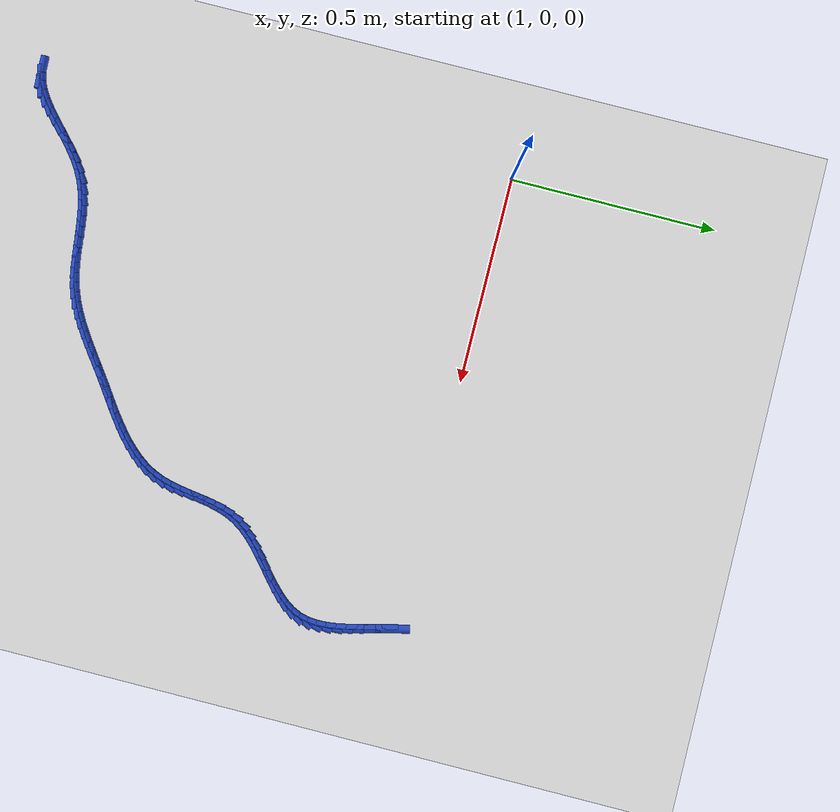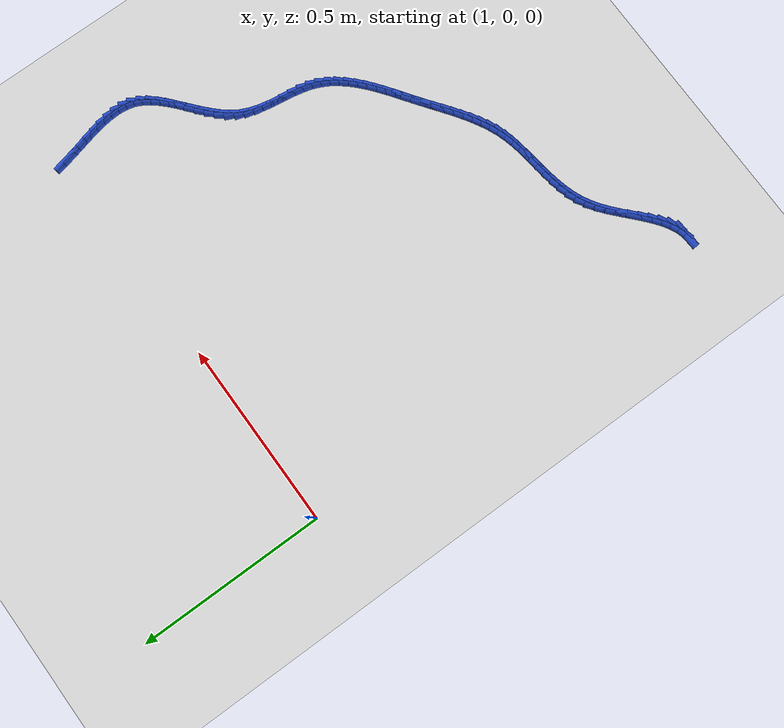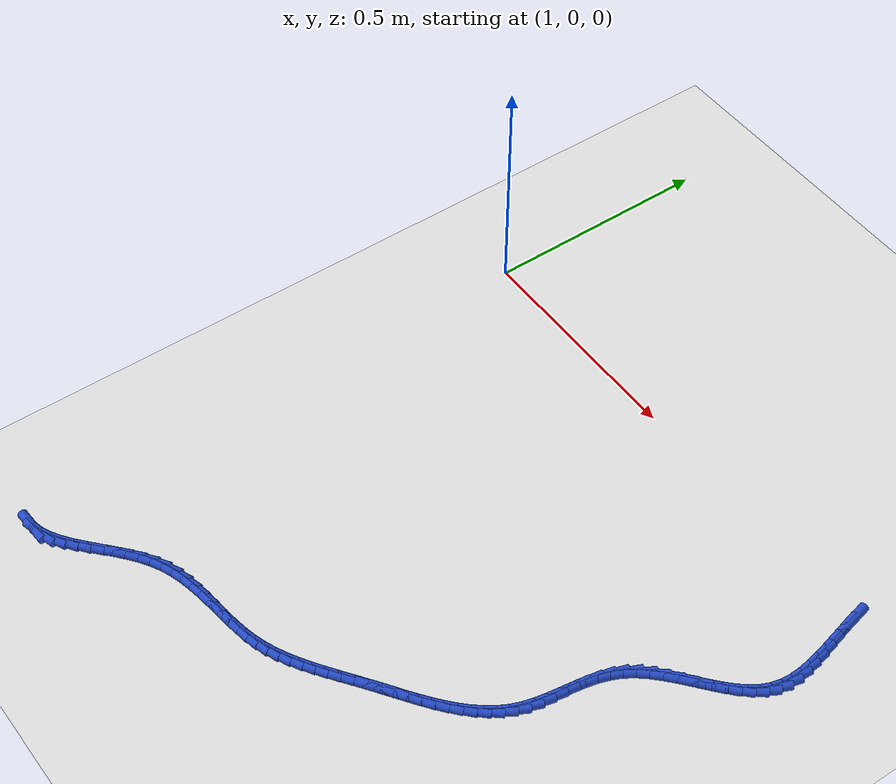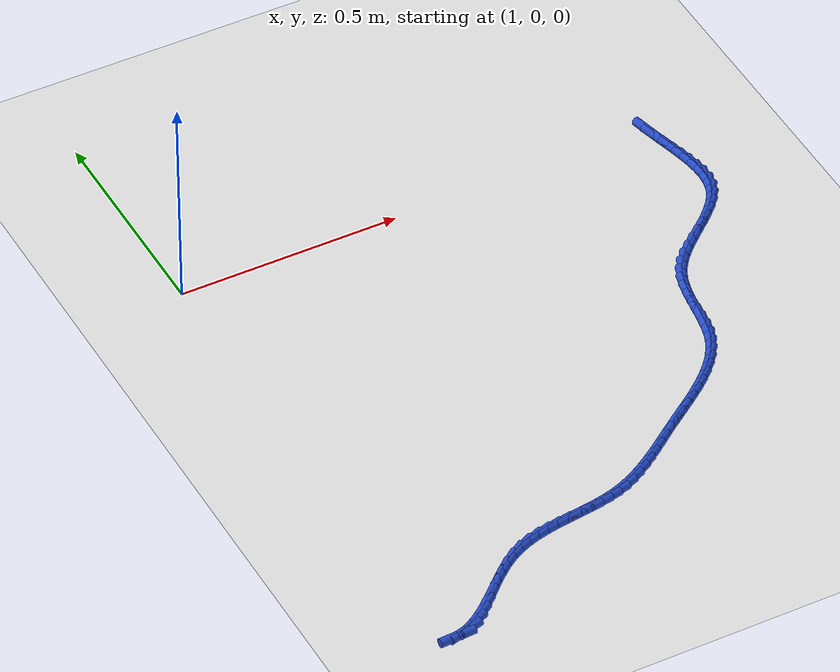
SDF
<sdf version="1.6">
 <world name="default">
  <model name="ground_plane">
   <static>1</static>
   <link name="link">
    <collision name="collision">
     <geometry><plane><normal>0 0 1</normal><size>100 100</size></plane></geometry>
     <surface><friction><ode><mu>100</mu><mu2>50</mu2></ode></friction></surface>
    </collision>
    <visual name="visual">
     <cast_shadows>0</cast_shadows>
     <geometry><plane><normal>0 0 1</normal><size>100 100</size></plane></geometry>
     <material>
      <script><uri>file://media/materials/scripts/gazebo.material</uri><name>Gazebo/WhiteGlow</name></script>
     </material>
    </visual>
   </link>
  </model>
  <model name="line">
   <link name="link_139">
    <pose>2.0985111593808528 -0.012941283410467023 0.01 0 1.57 -1.3430905979331682</pose>
    <collision name="collision">
     <geometry><cylinder><radius>0.01</radius><length>0.08</length></cylinder></geometry>
    </collision>
    <visual name="visual">
     <material>
      <script><name>Gazebo/Blue</name><uri>file://media/materials/scripts/gazebo.material</uri></script>
     </material>
     <geometry><cylinder><radius>0.01</radius><length>0.08</length></cylinder></geometry>
    </visual>
   </link>
   <link name="link_140">
    <pose>2.1045416661815017 -0.038965739221655055 0.01 0 1.57 -1.3256134732515827</pose>
    <collision name="collision">
     <geometry><cylinder><radius>0.01</radius><length>0.08</length></cylinder></geometry>
    </collision>
    <visual name="visual">
     <material>
      <script><name>Gazebo/Blue</name><uri>file://media/materials/scripts/gazebo.material</uri></script>
     </material>
     <geometry><cylinder><radius>0.01</radius><length>0.08</length></cylinder></geometry>
    </visual>
   </link>
   <link name="link_141">
    <pose>2.1110600430180693 -0.06501663820188348 0.01 0 1.57 -1.3265087184056212</pose>
    <collision name="collision">
     <geometry><cylinder><radius>0.01</radius><length>0.08</length></cylinder></geometry>
    </collision>
    <visual name="visual">
     <material>
      <script><name>Gazebo/Blue</name><uri>file://media/materials/scripts/gazebo.material</uri></script>
     </material>
     <geometry><cylinder><radius>0.01</radius><length>0.08</length></cylinder></geometry>
    </visual>
   </link>
   <link name="link_142">
    <pose>2.117516794524074 -0.09091970796303375 0.01 0 1.57 -1.346138939269206</pose>
    <collision name="collision">
     <geometry><cylinder><radius>0.01</radius><length>0.08</length></cylinder></geometry>
    </collision>
    <visual name="visual">
     <material>
      <script><name>Gazebo/Blue</name><uri>file://media/materials/scripts/gazebo.material</uri></script>
     </material>
     <geometry><cylinder><radius>0.01</radius><length>0.08</length></cylinder></geometry>
    </visual>
   </link>
   <link name="link_143">
    <pose>2.123362425333032 -0.11650067611698686 0.01 0 1.57 -1.386155022099716</pose>
    <collision name="collision">
     <geometry><cylinder><radius>0.01</radius><length>0.08</length></cylinder></geometry>
    </collision>
    <visual name="visual">
     <material>
      <script><name>Gazebo/Blue</name><uri>file://media/materials/scripts/gazebo.material</uri></script>
     </material>
     <geometry><cylinder><radius>0.01</radius><length>0.08</length></cylinder></geometry>
    </visual>
   </link>
   <link name="link_144">
    <pose>2.1280474400784604 -0.14158527027562387 0.01 0 1.57 -1.4495414894823762</pose>
    <collision name="collision">
     <geometry><cylinder><radius>0.01</radius><length>0.08</length></cylinder></geometry>
    </collision>
    <visual name="visual">
     <material>
      <script><name>Gazebo/Blue</name><uri>file://media/materials/scripts/gazebo.material</uri></script>
     </material>
     <geometry><cylinder><radius>0.01</radius><length>0.08</length></cylinder></geometry>
    </visual>
   </link>
   <link name="link_145">
    <pose>2.131022343393875 -0.1659992180508258 0.01 0 1.57 -1.54045663697183</pose>
    <collision name="collision">
     <geometry><cylinder><radius>0.01</radius><length>0.08</length></cylinder></geometry>
    </collision>
    <visual name="visual">
     <material>
      <script><name>Gazebo/Blue</name><uri>file://media/materials/scripts/gazebo.material</uri></script>
     </material>
     <geometry><cylinder><radius>0.01</radius><length>0.08</length></cylinder></geometry>
    </visual>
   </link>
   <link name="link_146">
    <pose>2.131737639912793 -0.1895682470544743 0.01 0 1.57 1.4782094397228598</pose>
    <collision name="collision">
     <geometry><cylinder><radius>0.01</radius><length>0.08</length></cylinder></geometry>
    </collision>
    <visual name="visual">
     <material>
      <script><name>Gazebo/Blue</name><uri>file://media/materials/scripts/gazebo.material</uri></script>
     </material>
     <geometry><cylinder><radius>0.01</radius><length>0.08</length></cylinder></geometry>
    </visual>
   </link>
   <link name="link_147">
    <pose>2.129643834268732 -0.21211808489844913 0.01 0 1.57 1.3208303715066665</pose>
    <collision name="collision">
     <geometry><cylinder><radius>0.01</radius><length>0.08</length></cylinder></geometry>
    </collision>
    <visual name="visual">
     <material>
      <script><name>Gazebo/Blue</name><uri>file://media/materials/scripts/gazebo.material</uri></script>
     </material>
     <geometry><cylinder><radius>0.01</radius><length>0.08</length></cylinder></geometry>
    </visual>
   </link>
   <link name="link_148">
    <pose>2.1241914310952072 -0.23347445919463186 0.01 0 1.57 1.1375826697005806</pose>
    <collision name="collision">
     <geometry><cylinder><radius>0.01</radius><length>0.08</length></cylinder></geometry>
    </collision>
    <visual name="visual">
     <material>
      <script><name>Gazebo/Blue</name><uri>file://media/materials/scripts/gazebo.material</uri></script>
     </material>
     <geometry><cylinder><radius>0.01</radius><length>0.08</length></cylinder></geometry>
    </visual>
   </link>
   <link name="link_149">
    <pose>2.1149296373151873 -0.2534992503137813 0.01 0 1.57 0.9757400405766491</pose>
    <collision name="collision">
     <geometry><cylinder><radius>0.01</radius><length>0.08</length></cylinder></geometry>
    </collision>
    <visual name="visual">
     <material>
      <script><name>Gazebo/Blue</name><uri>file://media/materials/scripts/gazebo.material</uri></script>
     </material>
     <geometry><cylinder><radius>0.01</radius><length>0.08</length></cylinder></geometry>
    </visual>
   </link>
   <link name="link_150">
    <pose>2.10217850885284 -0.27233668585716525 0.01 0 1.57 0.8560287970393897</pose>
    <collision name="collision">
     <geometry><cylinder><radius>0.01</radius><length>0.08</length></cylinder></geometry>
    </collision>
    <visual name="visual">
     <material>
      <script><name>Gazebo/Blue</name><uri>file://media/materials/scripts/gazebo.material</uri></script>
     </material>
     <geometry><cylinder><radius>0.01</radius><length>0.08</length></cylinder></geometry>
    </visual>
   </link>
   <link name="link_151">
    <pose>2.086620480974435 -0.2902637260409694 0.01 0 1.57 0.7743617284906656</pose>
    <collision name="collision">
     <geometry><cylinder><radius>0.01</radius><length>0.08</length></cylinder></geometry>
    </collision>
    <visual name="visual">
     <material>
      <script><name>Gazebo/Blue</name><uri>file://media/materials/scripts/gazebo.material</uri></script>
     </material>
     <geometry><cylinder><radius>0.01</radius><length>0.08</length></cylinder></geometry>
    </visual>
   </link>
   <link name="link_152">
    <pose>2.0689400929146435 -0.3075581017247227 0.01 0 1.57 0.7250470023107883</pose>
    <collision name="collision">
     <geometry><cylinder><radius>0.01</radius><length>0.08</length></cylinder></geometry>
    </collision>
    <visual name="visual">
     <material>
      <script><name>Gazebo/Blue</name><uri>file://media/materials/scripts/gazebo.material</uri></script>
     </material>
     <geometry><cylinder><radius>0.01</radius><length>0.08</length></cylinder></geometry>
    </visual>
   </link>
   <link name="link_153">
    <pose>2.0498218839081357 -0.3244975437679536 0.01 0 1.57 0.7036600239770936</pose>
    <collision name="collision">
     <geometry><cylinder><radius>0.01</radius><length>0.08</length></cylinder></geometry>
    </collision>
    <visual name="visual">
     <material>
      <script><name>Gazebo/Blue</name><uri>file://media/materials/scripts/gazebo.material</uri></script>
     </material>
     <geometry><cylinder><radius>0.01</radius><length>0.08</length></cylinder></geometry>
    </visual>
   </link>
   <link name="link_154">
    <pose>2.029950393189584 -0.34135978303019127 0.01 0 1.57 0.7077913026462258</pose>
    <collision name="collision">
     <geometry><cylinder><radius>0.01</radius><length>0.08</length></cylinder></geometry>
    </collision>
    <visual name="visual">
     <material>
      <script><name>Gazebo/Blue</name><uri>file://media/materials/scripts/gazebo.material</uri></script>
     </material>
     <geometry><cylinder><radius>0.01</radius><length>0.08</length></cylinder></geometry>
    </visual>
   </link>
   <link name="link_155">
    <pose>2.0100101599936577 -0.358422550370965 0.01 0 1.57 0.7370596707430793</pose>
    <collision name="collision">
     <geometry><cylinder><radius>0.01</radius><length>0.08</length></cylinder></geometry>
    </collision>
    <visual name="visual">
     <material>
      <script><name>Gazebo/Blue</name><uri>file://media/materials/scripts/gazebo.material</uri></script>
     </material>
     <geometry><cylinder><radius>0.01</radius><length>0.08</length></cylinder></geometry>
    </visual>
   </link>
   <link name="link_156">
    <pose>1.9906857235550317 -0.3759635766498027 0.01 0 1.57 0.7929119878562836</pose>
    <collision name="collision">
     <geometry><cylinder><radius>0.01</radius><length>0.08</length></cylinder></geometry>
    </collision>
    <visual name="visual">
     <material>
      <script><name>Gazebo/Blue</name><uri>file://media/materials/scripts/gazebo.material</uri></script>
     </material>
     <geometry><cylinder><radius>0.01</radius><length>0.08</length></cylinder></geometry>
    </visual>
   </link>
   <link name="link_157">
    <pose>1.9726616231083738 -0.3942605927262333 0.01 0 1.57 0.8781904318207975</pose>
    <collision name="collision">
     <geometry><cylinder><radius>0.01</radius><length>0.08</length></cylinder></geometry>
    </collision>
    <visual name="visual">
     <material>
      <script><name>Gazebo/Blue</name><uri>file://media/materials/scripts/gazebo.material</uri></script>
     </material>
     <geometry><cylinder><radius>0.01</radius><length>0.08</length></cylinder></geometry>
    </visual>
   </link>
   <link name="link_158">
    <pose>1.9566223978883563 -0.4135913294597861 0.01 0 1.57 0.9960442701417566</pose>
    <collision name="collision">
     <geometry><cylinder><radius>0.01</radius><length>0.08</length></cylinder></geometry>
    </collision>
    <visual name="visual">
     <material>
      <script><name>Gazebo/Blue</name><uri>file://media/materials/scripts/gazebo.material</uri></script>
     </material>
     <geometry><cylinder><radius>0.01</radius><length>0.08</length></cylinder></geometry>
    </visual>
   </link>
   <link name="link_159">
    <pose>1.9432525871296509 -0.43423351770998964 0.01 0 1.57 1.1383748726452882</pose>
    <collision name="collision">
     <geometry><cylinder><radius>0.01</radius><length>0.08</length></cylinder></geometry>
    </collision>
    <visual name="visual">
     <material>
      <script><name>Gazebo/Blue</name><uri>file://media/materials/scripts/gazebo.material</uri></script>
     </material>
     <geometry><cylinder><radius>0.01</radius><length>0.08</length></cylinder></geometry>
    </visual>
   </link>
   <link name="link_160">
    <pose>1.9330341755202658 -0.4563726136223291 0.01 0 1.57 1.2597479610778124</pose>
    <collision name="collision">
     <geometry><cylinder><radius>0.01</radius><length>0.08</length></cylinder></geometry>
    </collision>
    <visual name="visual">
     <material>
      <script><name>Gazebo/Blue</name><uri>file://media/materials/scripts/gazebo.material</uri></script>
     </material>
     <geometry><cylinder><radius>0.01</radius><length>0.08</length></cylinder></geometry>
    </visual>
   </link>
   <link name="link_161">
    <pose>1.9255130553955357 -0.47976763189436866 0.01 0 1.57 1.346206918707622</pose>
    <collision name="collision">
     <geometry><cylinder><radius>0.01</radius><length>0.08</length></cylinder></geometry>
    </collision>
    <visual name="visual">
     <material>
      <script><name>Gazebo/Blue</name><uri>file://media/materials/scripts/gazebo.material</uri></script>
     </material>
     <geometry><cylinder><radius>0.01</radius><length>0.08</length></cylinder></geometry>
    </visual>
   </link>
   <link name="link_162">
    <pose>1.919964887028538 -0.5040544816865167 0.01 0 1.57 1.3992312947619596</pose>
    <collision name="collision">
     <geometry><cylinder><radius>0.01</radius><length>0.08</length></cylinder></geometry>
    </collision>
    <visual name="visual">
     <material>
      <script><name>Gazebo/Blue</name><uri>file://media/materials/scripts/gazebo.material</uri></script>
     </material>
     <geometry><cylinder><radius>0.01</radius><length>0.08</length></cylinder></geometry>
    </visual>
   </link>
   <link name="link_163">
    <pose>1.9156653046054464 -0.5288690602751654 0.01 0 1.57 1.4207855284466262</pose>
    <collision name="collision">
     <geometry><cylinder><radius>0.01</radius><length>0.08</length></cylinder></geometry>
    </collision>
    <visual name="visual">
     <material>
      <script><name>Gazebo/Blue</name><uri>file://media/materials/scripts/gazebo.material</uri></script>
     </material>
     <geometry><cylinder><radius>0.01</radius><length>0.08</length></cylinder></geometry>
    </visual>
   </link>
   <link name="link_164">
    <pose>1.9118899423124347 -0.5538472649367071 0.01 0 1.57 1.4117054158554319</pose>
    <collision name="collision">
     <geometry><cylinder><radius>0.01</radius><length>0.08</length></cylinder></geometry>
    </collision>
    <visual name="visual">
     <material>
      <script><name>Gazebo/Blue</name><uri>file://media/materials/scripts/gazebo.material</uri></script>
     </material>
     <geometry><cylinder><radius>0.01</radius><length>0.08</length></cylinder></geometry>
    </visual>
   </link>
   <link name="link_165">
    <pose>1.9079144343356758 -0.5786249929475321 0.01 0 1.57 1.3711227809846926</pose>
    <collision name="collision">
     <geometry><cylinder><radius>0.01</radius><length>0.08</length></cylinder></geometry>
    </collision>
    <visual name="visual">
     <material>
      <script><name>Gazebo/Blue</name><uri>file://media/materials/scripts/gazebo.material</uri></script>
     </material>
     <geometry><cylinder><radius>0.01</radius><length>0.08</length></cylinder></geometry>
    </visual>
   </link>
   <link name="link_166">
    <pose>1.9030144148613435 -0.6028381415840329 0.01 0 1.57 1.2966232810785316</pose>
    <collision name="collision">
     <geometry><cylinder><radius>0.01</radius><length>0.08</length></cylinder></geometry>
    </collision>
    <visual name="visual">
     <material>
      <script><name>Gazebo/Blue</name><uri>file://media/materials/scripts/gazebo.material</uri></script>
     </material>
     <geometry><cylinder><radius>0.01</radius><length>0.08</length></cylinder></geometry>
    </visual>
   </link>
   <link name="link_167">
    <pose>1.8964655180756111 -0.6261226081226011 0.01 0 1.57 1.1871021596754026</pose>
    <collision name="collision">
     <geometry><cylinder><radius>0.01</radius><length>0.08</length></cylinder></geometry>
    </collision>
    <visual name="visual">
     <material>
      <script><name>Gazebo/Blue</name><uri>file://media/materials/scripts/gazebo.material</uri></script>
     </material>
     <geometry><cylinder><radius>0.01</radius><length>0.08</length></cylinder></geometry>
    </visual>
   </link>
   <link name="link_168">
    <pose>1.8875799193260847 -0.6481328686618888 0.01 0 1.57 1.067817158232341</pose>
    <collision name="collision">
     <geometry><cylinder><radius>0.01</radius><length>0.08</length></cylinder></geometry>
    </collision>
    <visual name="visual">
     <material>
      <script><name>Gazebo/Blue</name><uri>file://media/materials/scripts/gazebo.material</uri></script>
     </material>
     <geometry><cylinder><radius>0.01</radius><length>0.08</length></cylinder></geometry>
    </visual>
   </link>
   <link name="link_169">
    <pose>1.8762103162862453 -0.6687982200185089 0.01 0 1.57 0.9612368856213043</pose>
    <collision name="collision">
     <geometry><cylinder><radius>0.01</radius><length>0.08</length></cylinder></geometry>
    </collision>
    <visual name="visual">
     <material>
      <script><name>Gazebo/Blue</name><uri>file://media/materials/scripts/gazebo.material</uri></script>
     </material>
     <geometry><cylinder><radius>0.01</radius><length>0.08</length></cylinder></geometry>
    </visual>
   </link>
   <link name="link_170">
    <pose>1.862622332398928 -0.6882579051129928 0.01 0 1.57 0.8697353494335381</pose>
    <collision name="collision">
     <geometry><cylinder><radius>0.01</radius><length>0.08</length></cylinder></geometry>
    </collision>
    <visual name="visual">
     <material>
      <script><name>Gazebo/Blue</name><uri>file://media/materials/scripts/gazebo.material</uri></script>
     </material>
     <geometry><cylinder><radius>0.01</radius><length>0.08</length></cylinder></geometry>
    </visual>
   </link>
   <link name="link_171">
    <pose>1.8470920315277892 -0.7066564751460461 0.01 0 1.57 0.7936293509944411</pose>
    <collision name="collision">
     <geometry><cylinder><radius>0.01</radius><length>0.08</length></cylinder></geometry>
    </collision>
    <visual name="visual">
     <material>
      <script><name>Gazebo/Blue</name><uri>file://media/materials/scripts/gazebo.material</uri></script>
     </material>
     <geometry><cylinder><radius>0.01</radius><length>0.08</length></cylinder></geometry>
    </visual>
   </link>
   <link name="link_172">
    <pose>1.8298954775364853 -0.7241384813183744 0.01 0 1.57 0.7322775549436944</pose>
    <collision name="collision">
     <geometry><cylinder><radius>0.01</radius><length>0.08</length></cylinder></geometry>
    </collision>
    <visual name="visual">
     <material>
      <script><name>Gazebo/Blue</name><uri>file://media/materials/scripts/gazebo.material</uri></script>
     </material>
     <geometry><cylinder><radius>0.01</radius><length>0.08</length></cylinder></geometry>
    </visual>
   </link>
   <link name="link_173">
    <pose>1.8113087342886725 -0.7408484748306836 0.01 0 1.57 0.6846229611025599</pose>
    <collision name="collision">
     <geometry><cylinder><radius>0.01</radius><length>0.08</length></cylinder></geometry>
    </collision>
    <visual name="visual">
     <material>
      <script><name>Gazebo/Blue</name><uri>file://media/materials/scripts/gazebo.material</uri></script>
     </material>
     <geometry><cylinder><radius>0.01</radius><length>0.08</length></cylinder></geometry>
    </visual>
   </link>
   <link name="link_174">
    <pose>1.791607865648009 -0.7569310068836783 0.01 0 1.57 0.6495628326719184</pose>
    <collision name="collision">
     <geometry><cylinder><radius>0.01</radius><length>0.08</length></cylinder></geometry>
    </collision>
    <visual name="visual">
     <material>
      <script><name>Gazebo/Blue</name><uri>file://media/materials/scripts/gazebo.material</uri></script>
     </material>
     <geometry><cylinder><radius>0.01</radius><length>0.08</length></cylinder></geometry>
    </visual>
   </link>
   <link name="link_175">
    <pose>1.7710689354781504 -0.7725306286780644 0.01 0 1.57 0.6261606861660363</pose>
    <collision name="collision">
     <geometry><cylinder><radius>0.01</radius><length>0.08</length></cylinder></geometry>
    </collision>
    <visual name="visual">
     <material>
      <script><name>Gazebo/Blue</name><uri>file://media/materials/scripts/gazebo.material</uri></script>
     </material>
     <geometry><cylinder><radius>0.01</radius><length>0.08</length></cylinder></geometry>
    </visual>
   </link>
   <link name="link_176">
    <pose>1.7499680076427522 -0.7877918914145471 0.01 0 1.57 0.6137525566038993</pose>
    <collision name="collision">
     <geometry><cylinder><radius>0.01</radius><length>0.08</length></cylinder></geometry>
    </collision>
    <visual name="visual">
     <material>
      <script><name>Gazebo/Blue</name><uri>file://media/materials/scripts/gazebo.material</uri></script>
     </material>
     <geometry><cylinder><radius>0.01</radius><length>0.08</length></cylinder></geometry>
    </visual>
   </link>
   <link name="link_177">
    <pose>1.7285811460054727 -0.8028593462938323 0.01 0 1.57 0.6119947444032453</pose>
    <collision name="collision">
     <geometry><cylinder><radius>0.01</radius><length>0.08</length></cylinder></geometry>
    </collision>
    <visual name="visual">
     <material>
      <script><name>Gazebo/Blue</name><uri>file://media/materials/scripts/gazebo.material</uri></script>
     </material>
     <geometry><cylinder><radius>0.01</radius><length>0.08</length></cylinder></geometry>
    </visual>
   </link>
   <link name="link_178">
    <pose>1.7071844144299682 -0.8178775445166254 0.01 0 1.57 0.6203113117221396</pose>
    <collision name="collision">
     <geometry><cylinder><radius>0.01</radius><length>0.08</length></cylinder></geometry>
    </collision>
    <visual name="visual">
     <material>
      <script><name>Gazebo/Blue</name><uri>file://media/materials/scripts/gazebo.material</uri></script>
     </material>
     <geometry><cylinder><radius>0.01</radius><length>0.08</length></cylinder></geometry>
    </visual>
   </link>
   <link name="link_179">
    <pose>1.6860426414731986 -0.8329807849979275 0.01 0 1.57 0.6284826412427066</pose>
    <collision name="collision">
     <geometry><cylinder><radius>0.01</radius><length>0.08</length></cylinder></geometry>
    </collision>
    <visual name="visual">
     <material>
      <script><name>Gazebo/Blue</name><uri>file://media/materials/scripts/gazebo.material</uri></script>
     </material>
     <geometry><cylinder><radius>0.01</radius><length>0.08</length></cylinder></geometry>
    </visual>
   </link>
   <link name="link_180">
    <pose>1.665216507119115 -0.84811707983802 0.01 0 1.57 0.6273060681829834</pose>
    <collision name="collision">
     <geometry><cylinder><radius>0.01</radius><length>0.08</length></cylinder></geometry>
    </collision>
    <visual name="visual">
     <material>
      <script><name>Gazebo/Blue</name><uri>file://media/materials/scripts/gazebo.material</uri></script>
     </material>
     <geometry><cylinder><radius>0.01</radius><length>0.08</length></cylinder></geometry>
    </visual>
   </link>
   <link name="link_181">
    <pose>1.6445887917296662 -0.8630721066499373 0.01 0 1.57 0.616167429391941</pose>
    <collision name="collision">
     <geometry><cylinder><radius>0.01</radius><length>0.08</length></cylinder></geometry>
    </collision>
    <visual name="visual">
     <material>
      <script><name>Gazebo/Blue</name><uri>file://media/materials/scripts/gazebo.material</uri></script>
     </material>
     <geometry><cylinder><radius>0.01</radius><length>0.08</length></cylinder></geometry>
    </visual>
   </link>
   <link name="link_182">
    <pose>1.6240363213421418 -0.8776261096892392 0.01 0 1.57 0.5946812998072176</pose>
    <collision name="collision">
     <geometry><cylinder><radius>0.01</radius><length>0.08</length></cylinder></geometry>
    </collision>
    <visual name="visual">
     <material>
      <script><name>Gazebo/Blue</name><uri>file://media/materials/scripts/gazebo.material</uri></script>
     </material>
     <geometry><cylinder><radius>0.01</radius><length>0.08</length></cylinder></geometry>
    </visual>
   </link>
   <link name="link_183">
    <pose>1.6034359219938312 -0.8915593332114863 0.01 0 1.57 0.5624156154792228</pose>
    <collision name="collision">
     <geometry><cylinder><radius>0.01</radius><length>0.08</length></cylinder></geometry>
    </collision>
    <visual name="visual">
     <material>
      <script><name>Gazebo/Blue</name><uri>file://media/materials/scripts/gazebo.material</uri></script>
     </material>
     <geometry><cylinder><radius>0.01</radius><length>0.08</length></cylinder></geometry>
    </visual>
   </link>
   <link name="link_184">
    <pose>1.5826644197220228 -0.9046520214722388 0.01 0 1.57 0.5189603386960434</pose>
    <collision name="collision">
     <geometry><cylinder><radius>0.01</radius><length>0.08</length></cylinder></geometry>
    </collision>
    <visual name="visual">
     <material>
      <script><name>Gazebo/Blue</name><uri>file://media/materials/scripts/gazebo.material</uri></script>
     </material>
     <geometry><cylinder><radius>0.01</radius><length>0.08</length></cylinder></geometry>
    </visual>
   </link>
   <link name="link_185">
    <pose>1.5615986405640043 -0.9166844187270567 0.01 0 1.57 0.46404730141023437</pose>
    <collision name="collision">
     <geometry><cylinder><radius>0.01</radius><length>0.08</length></cylinder></geometry>
    </collision>
    <visual name="visual">
     <material>
      <script><name>Gazebo/Blue</name><uri>file://media/materials/scripts/gazebo.material</uri></script>
     </material>
     <geometry><cylinder><radius>0.01</radius><length>0.08</length></cylinder></geometry>
    </visual>
   </link>
   <link name="link_186">
    <pose>1.5401154105570665 -0.9274367692315012 0.01 0 1.57 0.3977255983591023</pose>
    <collision name="collision">
     <geometry><cylinder><radius>0.01</radius><length>0.08</length></cylinder></geometry>
    </collision>
    <visual name="visual">
     <material>
      <script><name>Gazebo/Blue</name><uri>file://media/materials/scripts/gazebo.material</uri></script>
     </material>
     <geometry><cylinder><radius>0.01</radius><length>0.08</length></cylinder></geometry>
    </visual>
   </link>
   <link name="link_187">
    <pose>1.518091555738497 -0.9366893172411321 0.01 0 1.57 0.32075558320060477</pose>
    <collision name="collision">
     <geometry><cylinder><radius>0.01</radius><length>0.08</length></cylinder></geometry>
    </collision>
    <visual name="visual">
     <material>
      <script><name>Gazebo/Blue</name><uri>file://media/materials/scripts/gazebo.material</uri></script>
     </material>
     <geometry><cylinder><radius>0.01</radius><length>0.08</length></cylinder></geometry>
    </visual>
   </link>
   <link name="link_188">
    <pose>1.4954055326824525 -0.9442262533006184 0.01 0 1.57 0.24502763803480374</pose>
    <collision name="collision">
     <geometry><cylinder><radius>0.01</radius><length>0.08</length></cylinder></geometry>
    </collision>
    <visual name="visual">
     <material>
      <script><name>Gazebo/Blue</name><uri>file://media/materials/scripts/gazebo.material</uri></script>
     </material>
     <geometry><cylinder><radius>0.01</radius><length>0.08</length></cylinder></geometry>
    </visual>
   </link>
   <link name="link_189">
    <pose>1.4720343416397939 -0.9500702672157246 0.01 0 1.57 0.1877002226343599</pose>
    <collision name="collision">
     <geometry><cylinder><radius>0.01</radius><length>0.08</length></cylinder></geometry>
    </collision>
    <visual name="visual">
     <material>
      <script><name>Gazebo/Blue</name><uri>file://media/materials/scripts/gazebo.material</uri></script>
     </material>
     <geometry><cylinder><radius>0.01</radius><length>0.08</length></cylinder></geometry>
    </visual>
   </link>
   <link name="link_190">
    <pose>1.4481081360630867 -0.9546147161618801 0.01 0 1.57 0.14967610973468629</pose>
    <collision name="collision">
     <geometry><cylinder><radius>0.01</radius><length>0.08</length></cylinder></geometry>
    </collision>
    <visual name="visual">
     <material>
      <script><name>Gazebo/Blue</name><uri>file://media/materials/scripts/gazebo.material</uri></script>
     </material>
     <geometry><cylinder><radius>0.01</radius><length>0.08</length></cylinder></geometry>
    </visual>
   </link>
   <link name="link_191">
    <pose>1.423770291969302 -0.9582849590821102 0.01 0 1.57 0.13017818387181654</pose>
    <collision name="collision">
     <geometry><cylinder><radius>0.01</radius><length>0.08</length></cylinder></geometry>
    </collision>
    <visual name="visual">
     <material>
      <script><name>Gazebo/Blue</name><uri>file://media/materials/scripts/gazebo.material</uri></script>
     </material>
     <geometry><cylinder><radius>0.01</radius><length>0.08</length></cylinder></geometry>
    </visual>
   </link>
   <link name="link_192">
    <pose>1.3991641853754084 -0.961506354919441 0.01 0 1.57 0.1285941439130477</pose>
    <collision name="collision">
     <geometry><cylinder><radius>0.01</radius><length>0.08</length></cylinder></geometry>
    </collision>
    <visual name="visual">
     <material>
      <script><name>Gazebo/Blue</name><uri>file://media/materials/scripts/gazebo.material</uri></script>
     </material>
     <geometry><cylinder><radius>0.01</radius><length>0.08</length></cylinder></geometry>
    </visual>
   </link>
   <link name="link_193">
    <pose>1.3744331922983766 -0.9647042626168993 0.01 0 1.57 0.14464892138812918</pose>
    <collision name="collision">
     <geometry><cylinder><radius>0.01</radius><length>0.08</length></cylinder></geometry>
    </collision>
    <visual name="visual">
     <material>
      <script><name>Gazebo/Blue</name><uri>file://media/materials/scripts/gazebo.material</uri></script>
     </material>
     <geometry><cylinder><radius>0.01</radius><length>0.08</length></cylinder></geometry>
    </visual>
   </link>
   <link name="link_194">
    <pose>1.349720688755176 -0.9683040411175112 0.01 0 1.57 0.17840434598609775</pose>
    <collision name="collision">
     <geometry><cylinder><radius>0.01</radius><length>0.08</length></cylinder></geometry>
    </collision>
    <visual name="visual">
     <material>
      <script><name>Gazebo/Blue</name><uri>file://media/materials/scripts/gazebo.material</uri></script>
     </material>
     <geometry><cylinder><radius>0.01</radius><length>0.08</length></cylinder></geometry>
    </visual>
   </link>
   <link name="link_195">
    <pose>1.3251700507627762 -0.9727310493643028 0.01 0 1.57 0.2301055042285356</pose>
    <collision name="collision">
     <geometry><cylinder><radius>0.01</radius><length>0.08</length></cylinder></geometry>
    </collision>
    <visual name="visual">
     <material>
      <script><name>Gazebo/Blue</name><uri>file://media/materials/scripts/gazebo.material</uri></script>
     </material>
     <geometry><cylinder><radius>0.01</radius><length>0.08</length></cylinder></geometry>
    </visual>
   </link>
   <link name="link_196">
    <pose>1.300924654338147 -0.9784106463003002 0.01 0 1.57 0.2998595563144338</pose>
    <collision name="collision">
     <geometry><cylinder><radius>0.01</radius><length>0.08</length></cylinder></geometry>
    </collision>
    <visual name="visual">
     <material>
      <script><name>Gazebo/Blue</name><uri>file://media/materials/scripts/gazebo.material</uri></script>
     </material>
     <geometry><cylinder><radius>0.01</radius><length>0.08</length></cylinder></geometry>
    </visual>
   </link>
   <link name="link_197">
    <pose>1.2771278754982582 -0.9857681908685295 0.01 0 1.57 0.3871362482867553</pose>
    <collision name="collision">
     <geometry><cylinder><radius>0.01</radius><length>0.08</length></cylinder></geometry>
    </collision>
    <visual name="visual">
     <material>
      <script><name>Gazebo/Blue</name><uri>file://media/materials/scripts/gazebo.material</uri></script>
     </material>
     <geometry><cylinder><radius>0.01</radius><length>0.08</length></cylinder></geometry>
    </visual>
   </link>
   <link name="link_198">
    <pose>1.25392309026008 -0.995229042012017 0.01 0 1.57 0.49005981353031713</pose>
    <collision name="collision">
     <geometry><cylinder><radius>0.01</radius><length>0.08</length></cylinder></geometry>
    </collision>
    <visual name="visual">
     <material>
      <script><name>Gazebo/Blue</name><uri>file://media/materials/scripts/gazebo.material</uri></script>
     </material>
     <geometry><cylinder><radius>0.01</radius><length>0.08</length></cylinder></geometry>
    </visual>
   </link>
   <link name="link_199">
    <pose>1.231453052852205 -1.0072160200626248 0.01 0 1.57 0.5920883329310114</pose>
    <collision name="collision">
     <geometry><cylinder><radius>0.01</radius><length>0.08</length></cylinder></geometry>
    </collision>
    <visual name="visual">
     <material>
      <script><name>Gazebo/Blue</name><uri>file://media/materials/scripts/gazebo.material</uri></script>
     </material>
     <geometry><cylinder><radius>0.01</radius><length>0.08</length></cylinder></geometry>
    </visual>
   </link>
   <link name="link_200">
    <pose>1.209773642097342 -1.0217972541362816 0.01 0 1.57 0.6665894391154854</pose>
    <collision name="collision">
     <geometry><cylinder><radius>0.01</radius><length>0.08</length></cylinder></geometry>
    </collision>
    <visual name="visual">
     <material>
      <script><name>Gazebo/Blue</name><uri>file://media/materials/scripts/gazebo.material</uri></script>
     </material>
     <geometry><cylinder><radius>0.01</radius><length>0.08</length></cylinder></geometry>
    </visual>
   </link>
   <link name="link_201">
    <pose>1.1887653584525215 -1.038324846009121 0.01 0 1.57 0.7138805134231966</pose>
    <collision name="collision">
     <geometry><cylinder><radius>0.01</radius><length>0.08</length></cylinder></geometry>
    </collision>
    <visual name="visual">
     <material>
      <script><name>Gazebo/Blue</name><uri>file://media/materials/scripts/gazebo.material</uri></script>
     </material>
     <geometry><cylinder><radius>0.01</radius><length>0.08</length></cylinder></geometry>
    </visual>
   </link>
   <link name="link_202">
    <pose>1.1682875918100275 -1.0560647081404826 0.01 0 1.57 0.7366241693964871</pose>
    <collision name="collision">
     <geometry><cylinder><radius>0.01</radius><length>0.08</length></cylinder></geometry>
    </collision>
    <visual name="visual">
     <material>
      <script><name>Gazebo/Blue</name><uri>file://media/materials/scripts/gazebo.material</uri></script>
     </material>
     <geometry><cylinder><radius>0.01</radius><length>0.08</length></cylinder></geometry>
    </visual>
   </link>
   <link name="link_203">
    <pose>1.1481997320621433 -1.0742827529897059 0.01 0 1.57 0.7357989809003733</pose>
    <collision name="collision">
     <geometry><cylinder><radius>0.01</radius><length>0.08</length></cylinder></geometry>
    </collision>
    <visual name="visual">
     <material>
      <script><name>Gazebo/Blue</name><uri>file://media/materials/scripts/gazebo.material</uri></script>
     </material>
     <geometry><cylinder><radius>0.01</radius><length>0.08</length></cylinder></geometry>
    </visual>
   </link>
   <link name="link_204">
    <pose>1.1283611691011524 -1.0922448930161306 0.01 0 1.57 0.7104007654117452</pose>
    <collision name="collision">
     <geometry><cylinder><radius>0.01</radius><length>0.08</length></cylinder></geometry>
    </collision>
    <visual name="visual">
     <material>
      <script><name>Gazebo/Blue</name><uri>file://media/materials/scripts/gazebo.material</uri></script>
     </material>
     <geometry><cylinder><radius>0.01</radius><length>0.08</length></cylinder></geometry>
    </visual>
   </link>
   <link name="link_205">
    <pose>1.1086312928193374 -1.109217040679096 0.01 0 1.57 0.6571780564475608</pose>
    <collision name="collision">
     <geometry><cylinder><radius>0.01</radius><length>0.08</length></cylinder></geometry>
    </collision>
    <visual name="visual">
     <material>
      <script><name>Gazebo/Blue</name><uri>file://media/materials/scripts/gazebo.material</uri></script>
     </material>
     <geometry><cylinder><radius>0.01</radius><length>0.08</length></cylinder></geometry>
    </visual>
   </link>
   <link name="link_206">
    <pose>1.0888694931089833 -1.1244651084379425 0.01 0 1.57 0.5704485812409279</pose>
    <collision name="collision">
     <geometry><cylinder><radius>0.01</radius><length>0.08</length></cylinder></geometry>
    </collision>
    <visual name="visual">
     <material>
      <script><name>Gazebo/Blue</name><uri>file://media/materials/scripts/gazebo.material</uri></script>
     </material>
     <geometry><cylinder><radius>0.01</radius><length>0.08</length></cylinder></geometry>
    </visual>
   </link>
   <link name="link_207">
    <pose>1.068935159862372 -1.1372550087520092 0.01 0 1.57 0.4426458732049128</pose>
    <collision name="collision">
     <geometry><cylinder><radius>0.01</radius><length>0.08</length></cylinder></geometry>
    </collision>
    <visual name="visual">
     <material>
      <script><name>Gazebo/Blue</name><uri>file://media/materials/scripts/gazebo.material</uri></script>
     </material>
     <geometry><cylinder><radius>0.01</radius><length>0.08</length></cylinder></geometry>
    </visual>
   </link>
   <link name="link_208">
    <pose>1.0486876829717877 -1.1468526540806367 0.01 0 1.57 0.2673987892618456</pose>
    <collision name="collision">
     <geometry><cylinder><radius>0.01</radius><length>0.08</length></cylinder></geometry>
    </collision>
    <visual name="visual">
     <material>
      <script><name>Gazebo/Blue</name><uri>file://media/materials/scripts/gazebo.material</uri></script>
     </material>
     <geometry><cylinder><radius>0.01</radius><length>0.08</length></cylinder></geometry>
    </visual>
   </link>
   <link name="link_209">
    <pose>1.0279864523295148 -1.152523956883164 0.01 0 1.57 0.04813830353313761</pose>
    <collision name="collision">
     <geometry><cylinder><radius>0.01</radius><length>0.08</length></cylinder></geometry>
    </collision>
    <visual name="visual">
     <material>
      <script><name>Gazebo/Blue</name><uri>file://media/materials/scripts/gazebo.material</uri></script>
     </material>
     <geometry><cylinder><radius>0.01</radius><length>0.08</length></cylinder></geometry>
    </visual>
   </link>
  </model>
 </world>
</sdf>
